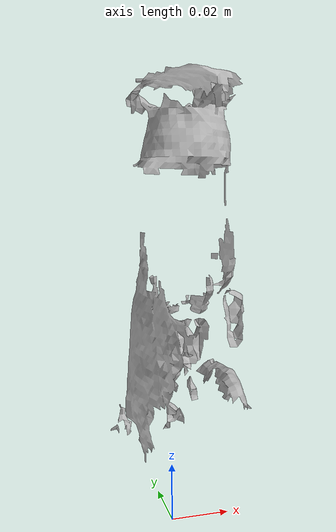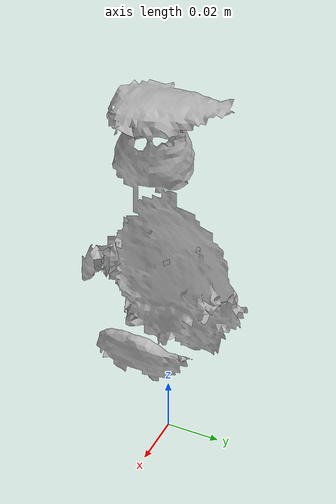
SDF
<?xml version='1.0'?>
<sdf version="1.4">
  <model name="softsoap_clear">
    <static>false</static>
    <link name="link">
      <inertial>
        <pose>0.0019743250470081854 -0.0015137977947263395 0.08516516758935816 3.084201722096422 0.029838746327461668 -0.10313944153566233</pose>
        <mass>0.0166701141748641</mass>
        <inertia>
          <ixx>1.768092456576202e-05</ixx>
          <ixy>1.7645456089687464e-22</ixy>
          <ixz>8.636888952518602e-22</ixz>
          <iyy>1.623391901047722e-05</iyy>
          <iyz>3.029984504184645e-21</iyz>
          <izz>4.495439367965831e-06</izz>
        </inertia>
      </inertial>
      <collision name="collision">
        <geometry>
          <mesh>
            <!-- Use a downsampled mesh for collisions -->
            <uri>model:///softsoap_clear/softsoap_clear_250_collision.obj</uri>
	        </mesh>
        </geometry>
        <surface>
      </surface>
      </collision>
      <visual name="visual">
        <geometry>
          <mesh>
            <uri>model:///softsoap_clear/optimized_tsdf_texture_mapped_mesh.obj</uri>
	        </mesh>
        </geometry>
        <material>
          <script>
            <uri>model:///softsoap_clear/softsoap_clear.material</uri>
            <name>softsoap_clear</name>
          </script>
        </material>
      </visual>
    </link>
  </model>
</sdf>
